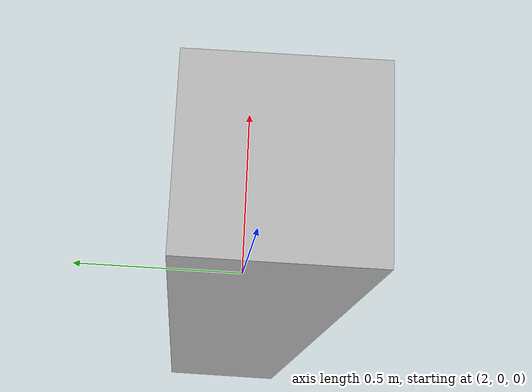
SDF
<?xml version="1.0" ?>
<sdf version="1.5">
  <model name="statua1">

      <pose>2 0 0 0 0 0</pose>

      <link name="link">

      <collision name='collision'>

        <geometry>

          <box>

            <size>0.4 0.4 2</size>

          </box>

        </geometry>

      </collision>

      <visual name='visual'>

        <geometry>

          <box>

            <size>0.4 0.4 2</size>

          </box>

        </geometry>

        <material>

          <script>

            <uri>model://leobot_gazebo/models/statua1/materials/scripts</uri>
            <uri>model://leobot_gazebo/models/statua1/materials/textures</uri>

            <name>statua1/img1</name>

          </script>

        </material>

      </visual>

    </link>

  </model>

</sdf>
